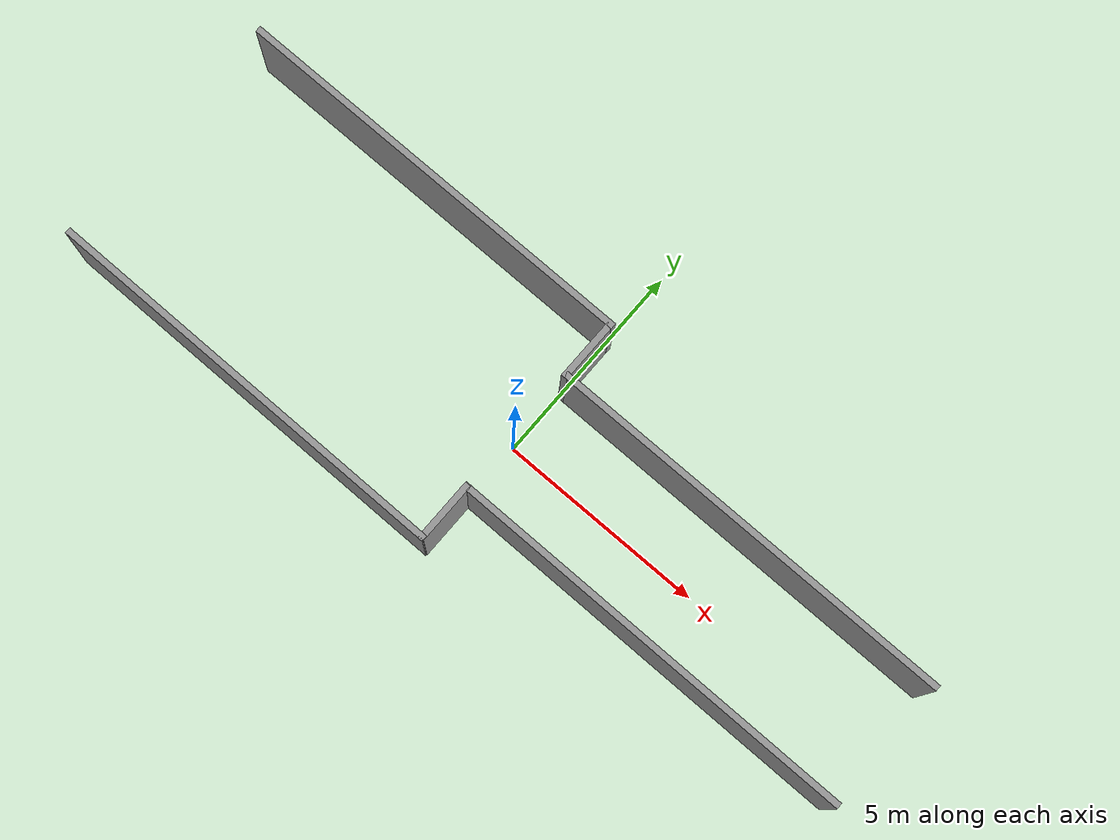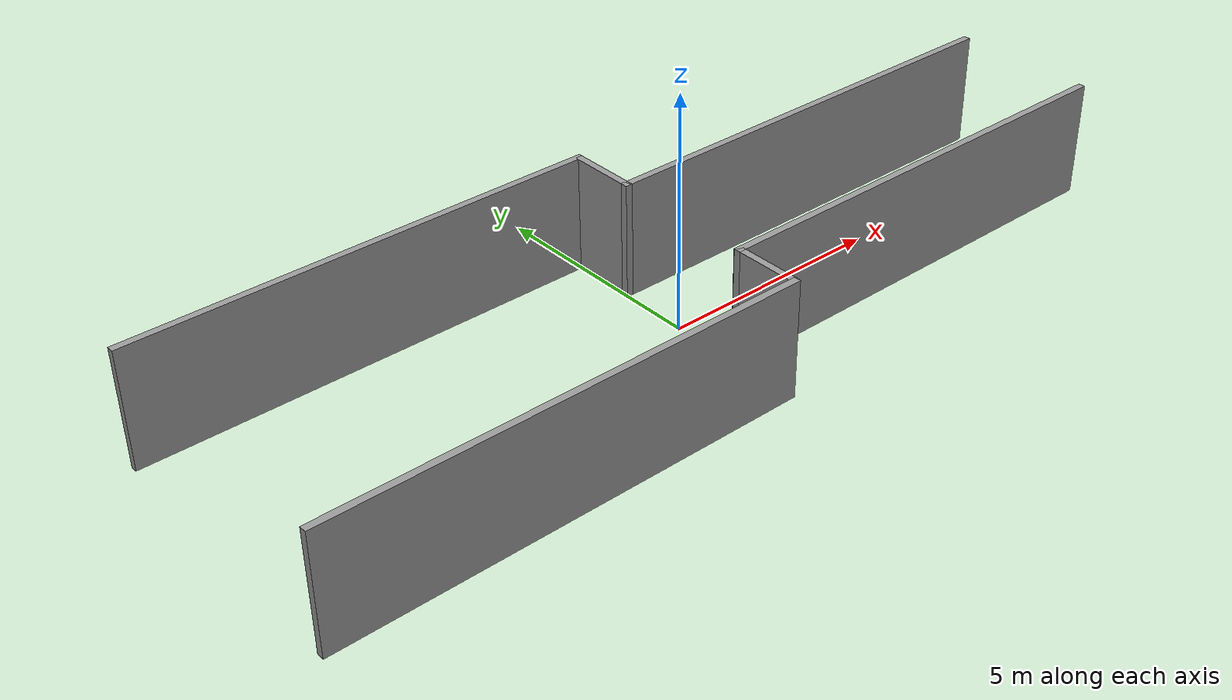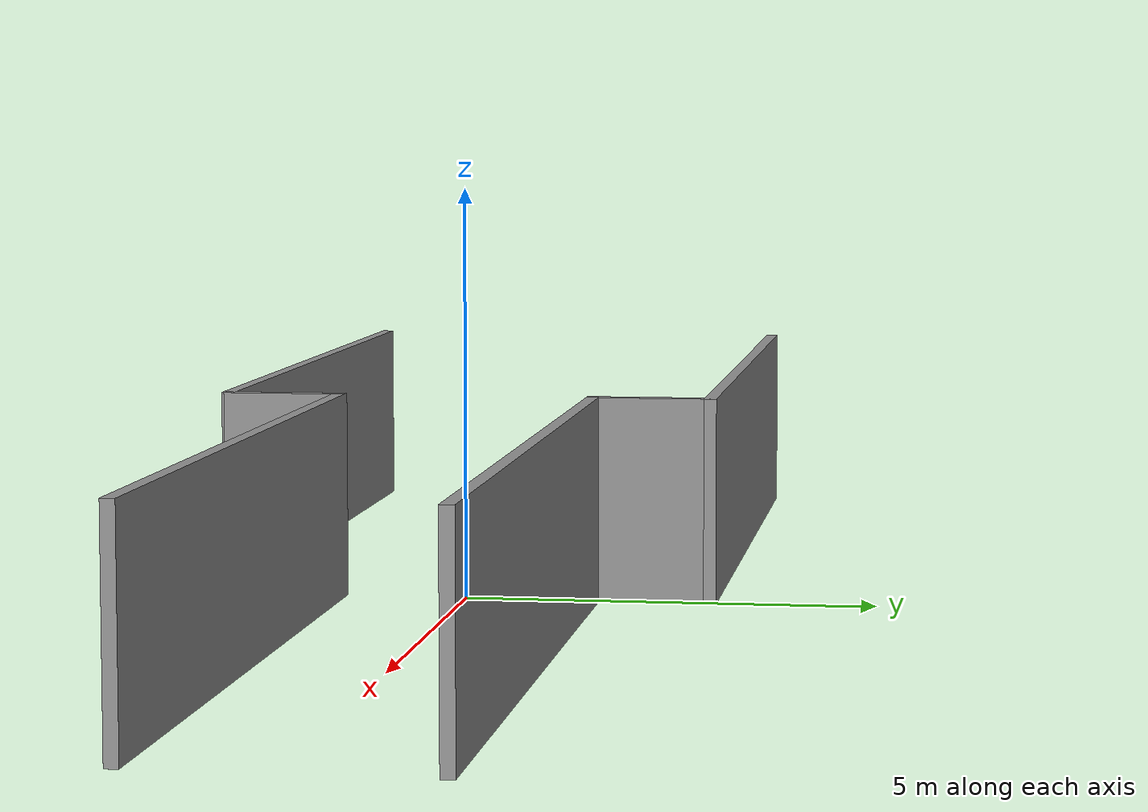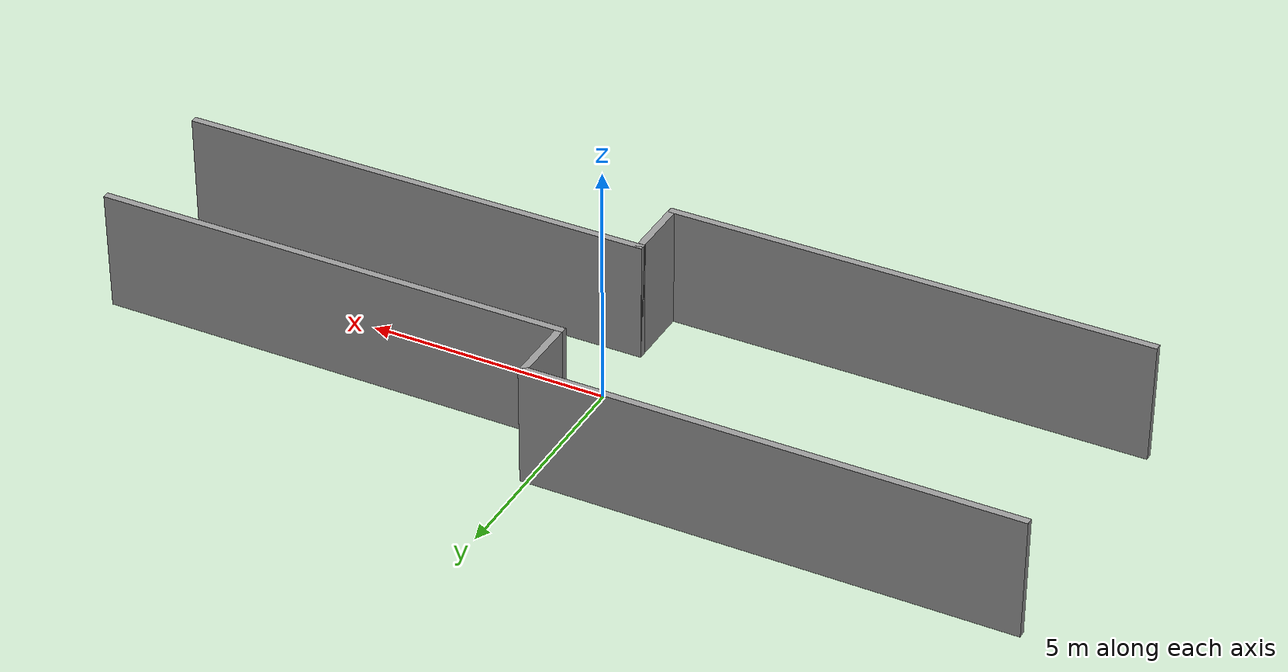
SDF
<?xml version='1.0'?>
<sdf version='1.7'>
  <model name='corridor_6m_3m'>
    <pose>0.039312 0.02478 0 0 -0 0</pose>
    <link name='Wall_1'>
      <collision name='Wall_1_Collision'>
        <geometry>
          <box>
            <size>10 0.15 2.5</size>
          </box>
        </geometry>
        <pose>0 0 1.25 0 -0 0</pose>
      </collision>
      <visual name='Wall_1_Visual'>
        <pose>0 0 1.25 0 -0 0</pose>
        <geometry>
          <box>
            <size>10 0.15 2.5</size>
          </box>
        </geometry>
        <material>
          <script>
            <uri>file://media/materials/scripts/gazebo.material</uri>
            <name>Gazebo/Grey</name>
          </script>
          <ambient>1 1 1 1</ambient>
        </material>
        <meta>
          <layer>0</layer>
        </meta>
      </visual>
      <pose>-4.94631 -2.97297 0 0 -0 0</pose>
    </link>
    <link name='Wall_17'>
      <collision name='Wall_17_Collision'>
        <geometry>
          <box>
            <size>1.5 0.15 2.5</size>
          </box>
        </geometry>
        <pose>0 0 1.25 0 -0 0</pose>
      </collision>
      <visual name='Wall_17_Visual'>
        <pose>0 0 1.25 0 -0 0</pose>
        <geometry>
          <box>
            <size>1.5 0.15 2.5</size>
          </box>
        </geometry>
        <material>
          <script>
            <uri>file://media/materials/scripts/gazebo.material</uri>
            <name>Gazebo/Grey</name>
          </script>
          <ambient>1 1 1 1</ambient>
        </material>
        <meta>
          <layer>0</layer>
        </meta>
      </visual>
      <pose>-0.006332 -2.26912 0 0 -0 -1.5708</pose>
    </link>
    <link name='Wall_19'>
      <collision name='Wall_19_Collision'>
        <geometry>
          <box>
            <size>1.5 0.15 2.5</size>
          </box>
        </geometry>
        <pose>0 0 1.25 0 -0 0</pose>
      </collision>
      <visual name='Wall_19_Visual'>
        <pose>0 0 1.25 0 -0 0</pose>
        <geometry>
          <box>
            <size>1.5 0.15 2.5</size>
          </box>
        </geometry>
        <material>
          <script>
            <uri>file://media/materials/scripts/gazebo.material</uri>
            <name>Gazebo/Grey</name>
          </script>
          <ambient>1 1 1 1</ambient>
        </material>
        <meta>
          <layer>0</layer>
        </meta>
      </visual>
      <pose>0.021312 2.22032 0 0 -0 1.5708</pose>
    </link>
    <link name='Wall_3'>
      <collision name='Wall_3_Collision'>
        <geometry>
          <box>
            <size>10 0.15 2.5</size>
          </box>
        </geometry>
        <pose>0 0 1.25 0 -0 0</pose>
      </collision>
      <visual name='Wall_3_Visual'>
        <pose>0 0 1.25 0 -0 0</pose>
        <geometry>
          <box>
            <size>10 0.15 2.5</size>
          </box>
        </geometry>
        <material>
          <script>
            <uri>file://media/materials/scripts/gazebo.material</uri>
            <name>Gazebo/Grey</name>
          </script>
          <ambient>1 1 1 1</ambient>
        </material>
        <meta>
          <layer>0</layer>
        </meta>
      </visual>
      <pose>-4.90028 2.97297 0 0 -0 0</pose>
    </link>
    <link name='Wall_5'>
      <collision name='Wall_5_Collision'>
        <geometry>
          <box>
            <size>10 0.15 2.5</size>
          </box>
        </geometry>
        <pose>0 0 1.25 0 -0 0</pose>
      </collision>
      <visual name='Wall_5_Visual'>
        <pose>0 0 1.25 0 -0 0</pose>
        <geometry>
          <box>
            <size>10 0.15 2.5</size>
          </box>
        </geometry>
        <material>
          <script>
            <uri>file://media/materials/scripts/gazebo.material</uri>
            <name>Gazebo/Grey</name>
          </script>
          <ambient>1 1 1 1</ambient>
        </material>
        <meta>
          <layer>0</layer>
        </meta>
      </visual>
      <pose>4.94631 1.54532 0 0 -0 3.14159</pose>
    </link>
    <link name='Wall_7'>
      <collision name='Wall_7_Collision'>
        <geometry>
          <box>
            <size>10 0.15 2.5</size>
          </box>
        </geometry>
        <pose>0 0 1.25 0 -0 0</pose>
      </collision>
      <visual name='Wall_7_Visual'>
        <pose>0 0 1.25 0 -0 0</pose>
        <geometry>
          <box>
            <size>10 0.15 2.5</size>
          </box>
        </geometry>
        <material>
          <script>
            <uri>file://media/materials/scripts/gazebo.material</uri>
            <name>Gazebo/Grey</name>
          </script>
          <ambient>1 1 1 1</ambient>
        </material>
        <meta>
          <layer>0</layer>
        </meta>
      </visual>
      <pose>4.91867 -1.5866 0 0 -0 0</pose>
    </link>
    <link name='Wall_9'>
      <collision name='Wall_9_Collision'>
        <geometry>
          <box>
            <size>0.15 0.15 2.5</size>
          </box>
        </geometry>
        <pose>0 0 1.25 0 -0 0</pose>
      </collision>
      <visual name='Wall_9_Visual'>
        <pose>0 0 1.25 0 -0 0</pose>
        <geometry>
          <box>
            <size>0.15 0.15 2.5</size>
          </box>
        </geometry>
        <material>
          <script>
            <uri>file://media/materials/scripts/gazebo.material</uri>
            <name>Gazebo/Grey</name>
          </script>
          <ambient>1 1 1 1</ambient>
        </material>
        <meta>
          <layer>0</layer>
        </meta>
      </visual>
      <pose>-0.006332 -1.59412 0 0 -0 0</pose>
    </link>
    <static>1</static>
  </model>
</sdf>
